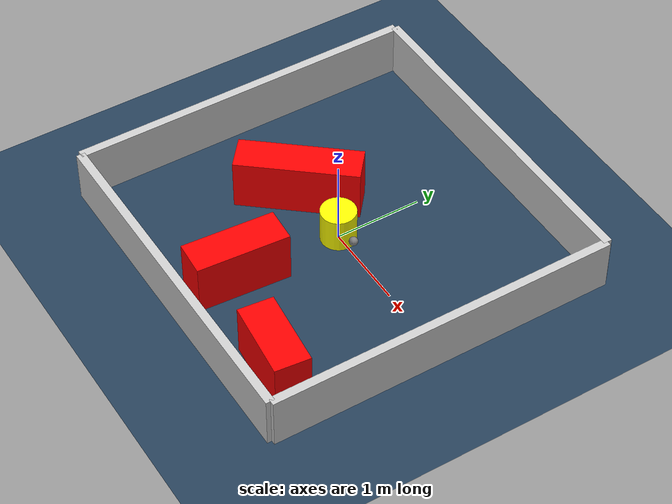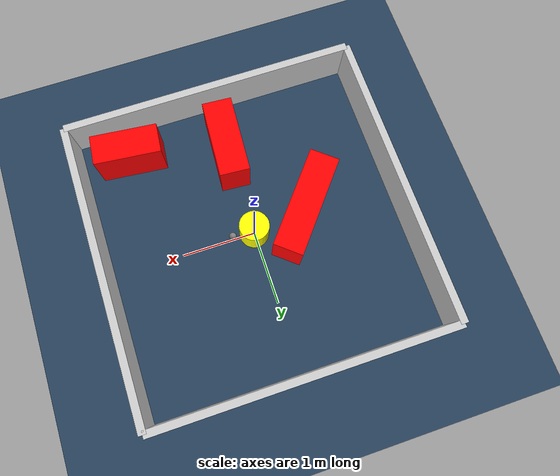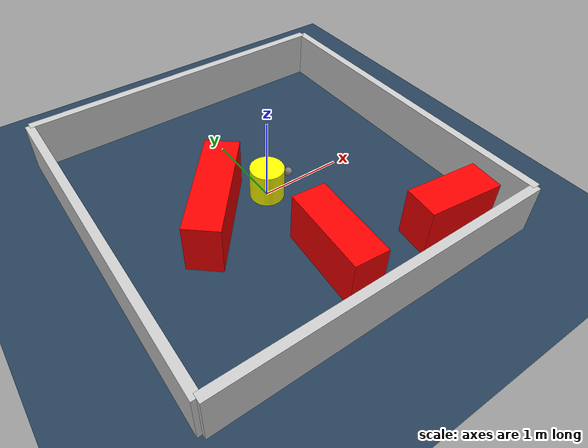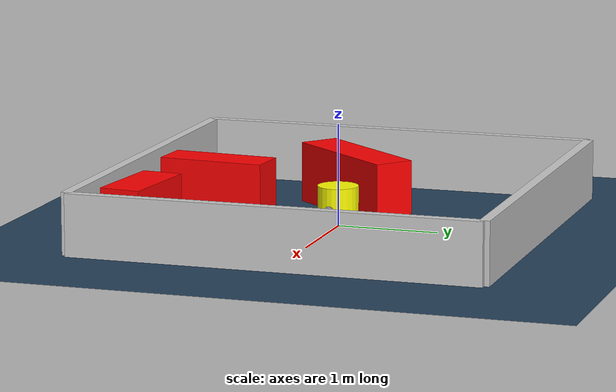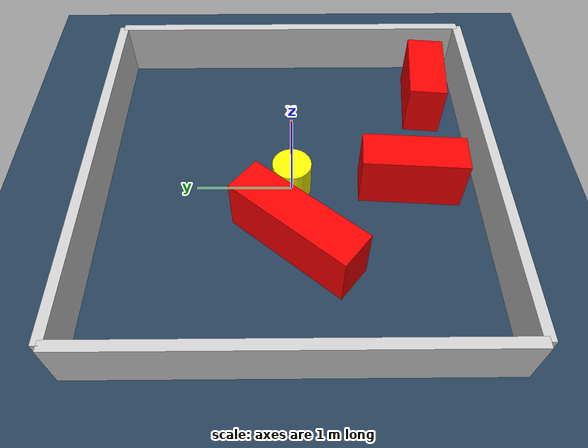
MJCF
<?xml version="1.0" ?>
<mujoco model="generated_environment">
  <option timestep="0.01" integrator="RK4" cone="elliptic"/>
  <default>
    <geom density="1"/>
  </default>
  <asset>
    <texture builtin="gradient" height="3072" rgb1="0.3 0.5 0.7" rgb2="0 0 0" type="skybox" width="512"/>
    <texture builtin="checker" height="300" mark="edge" markrgb="0.8 0.8 0.8" name="groundplane" rgb1="0.2 0.3 0.4" rgb2="0.1 0.2 0.3" type="2d" width="300"/>
    <material name="groundplane" reflectance="0.2" texrepeat="5 5" texture="groundplane" texuniform="true"/>
    <material name="robot" rgba="0.0 1.0 0.0 1"/>
  </asset>
  <worldbody>
    <light dir="0 0 -1" directional="true" pos="0 0 1.5"/>
    <geom condim="4" friction="1.0 0.005 0.001" material="groundplane" name="floor" size="0 0 0.05" type="plane"/>
    <body name="walls">
      <geom name="wall_1" condim="4" pos="-2.0 0.0 0.3" rgba="0.800000011920929 0.800000011920929 0.800000011920929 1.0" size="0.05 2.0 0.3" type="box"/>
      <geom name="wall_2" condim="4" pos="2.0 0.0 0.3" rgba="0.800000011920929 0.800000011920929 0.800000011920929 1.0" size="0.05 2.0 0.3" type="box"/>
      <geom name="wall_3" condim="4" pos="0.0 -2.0 0.3" rgba="0.800000011920929 0.800000011920929 0.800000011920929 1.0" size="2.0 0.05 0.3" type="box"/>
      <geom name="wall_4" condim="4" pos="0.0 2.0 0.3" rgba="0.800000011920929 0.800000011920929 0.800000011920929 1.0" size="2.0 0.05 0.3" type="box"/>
    </body>
    <body name="robot">
      <joint name="joint_x" type="slide" pos="0 0 0" axis="1 0 0"/>
      <joint name="joint_y" type="slide" pos="0 0 0" axis="0 1 0"/>
      <geom name="robot" type="sphere" pos="0.3 0.0 0.2" size="0.05" mass="5." friction="1.0 0.005 0.0001" condim="4" rgba="0.5 0.5 0.5 1.0"/>
      <site name="sensor_ball"/>
    </body>
    <body name="obstacle_movable_1">
      <geom name="obstacle_movable_1" condim="4" pos="0.0 0.0 0.2" euler="0 0 0.0" friction="1.0 0.005 0.001" rgba="1.0 1.0 0.0 1.0" size="0.2 0.2 0.0" type="cylinder" mass="0.1"/>
      <joint type="free"/>
    </body>
    <body name="obstacle_2_static">
      <geom name="obstacle_2_static" condim="4" pos="1.2798547406813061 -1.5366376097595154 0.3" euler="0 0 174.10173133856946" friction="1.0 0.005 0.001" rgba="1 0 0 1" size="0.4465638324206782 0.2 0.3" type="box"/>
    </body>
    <body name="obstacle_3_static">
      <geom name="obstacle_3_static" condim="4" pos="-0.7230452091530988 -0.047691001211294104 0.3" euler="0 0 50.26970324604302" friction="1.0 0.005 0.001" rgba="1 0 0 1" size="0.6874725325874456 0.2 0.3" type="box"/>
    </body>
    <body name="obstacle_4_static">
      <geom name="obstacle_4_static" condim="4" pos="-0.00864236660242601 -1.2321348425713023 0.3" euler="0 0 266.08675793404814" friction="1.0 0.005 0.001" rgba="1 0 0 1" size="0.5263675100419322 0.2 0.3" type="box"/>
    </body>
  </worldbody>
  <actuator>
    <motor name="actuator_x" joint="joint_x" gear="1" ctrlrange="-1 1"/>
    <motor name="actuator_y" joint="joint_y" gear="1" ctrlrange="-1 1"/>
  </actuator>
</mujoco>
